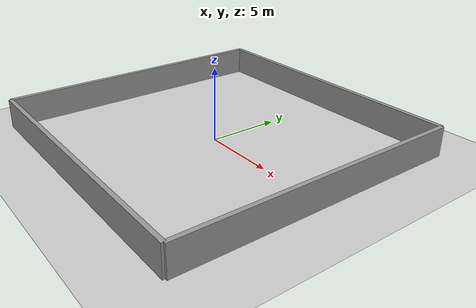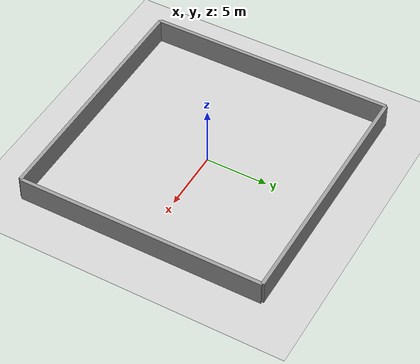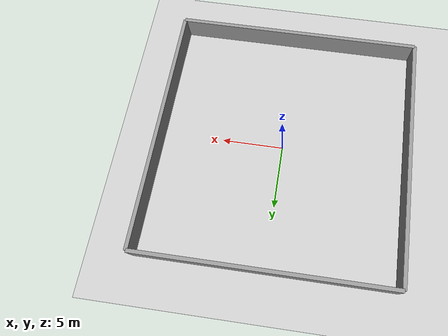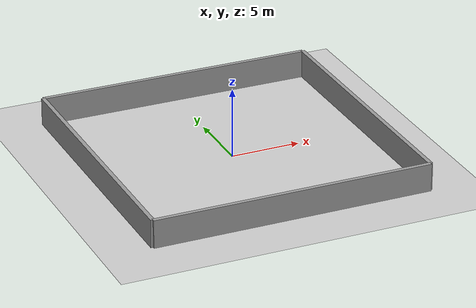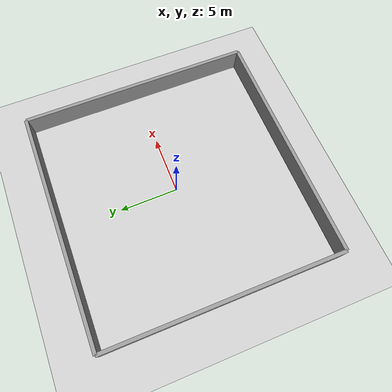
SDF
<sdf version='1.4'>
  <world name='default'>
    <!-- A global light source -->
    <include>
      <uri>model://sun</uri>
    </include>

    <!-- A ground plane -->
    <include>
      <uri>model://ground_plane</uri>
    </include>

    <physics type="ode">
      <real_time_update_rate>1000.0</real_time_update_rate>
      <max_step_size>0.001</max_step_size>
      <real_time_factor>1</real_time_factor>
      <ode>
        <solver>
          <type>quick</type>
          <iters>150</iters>
          <precon_iters>0</precon_iters>
          <sor>1.400000</sor>
          <use_dynamic_moi_rescaling>1</use_dynamic_moi_rescaling>
        </solver>
        <constraints>
          <cfm>0.00001</cfm>
          <erp>0.2</erp>
          <contact_max_correcting_vel>2000.000000</contact_max_correcting_vel>
          <contact_surface_layer>0.01000</contact_surface_layer>
        </constraints>
      </ode>
    </physics>

    <!-- place walls -->
    <model name='wall_n'>
      <pose>10.0 0.0 1.0 0 0 1.57</pose>
      <static>true</static>
      <link name='link'>
        <collision name='collision'>
          <geometry>
            <box>
              <size>20.0 0.3 2.0</size>
            </box>
          </geometry>
        </collision>
        <visual name='visual'>
          <geometry>
            <box>
              <size>20.0 0.3 2.0</size>
            </box>
          </geometry>
          <material>
            <script>
              <uri>file://media/materials/scripts/gazebo.material</uri>
              <name>Gazebo/Gray</name>
            </script>
          </material>
        </visual>
      </link>
    </model>

    <model name='wall_e'>
      <pose>0 -10.0 1.0 0 0 0.0</pose>
      <static>true</static>
      <link name='link'>
        <collision name='collision'>
          <geometry>
            <box>
              <size>20.0 0.3 2.0</size>
            </box>
          </geometry>
        </collision>
        <visual name='visual'>
          <geometry>
            <box>
              <size>20.0 0.3 2.0</size>
            </box>
          </geometry>
          <material>
            <script>
              <uri>file://media/materials/scripts/gazebo.material</uri>
              <name>Gazebo/Gray</name>
            </script>
          </material>
        </visual>
      </link>
    </model>

    <model name='wall_w'>
      <pose>0 10.0 1.0 0 0 0.0</pose>
      <static>true</static>
      <link name='link'>
        <collision name='collision'>
          <geometry>
            <box>
              <size>20.0 0.3 2.0</size>
            </box>
          </geometry>
        </collision>
        <visual name='visual'>
          <geometry>
            <box>
              <size>20.0 0.3 2.0</size>
            </box>
          </geometry>
          <material>
            <script>
              <uri>file://media/materials/scripts/gazebo.material</uri>
              <name>Gazebo/Gray</name>
            </script>
          </material>
        </visual>
      </link>
    </model>

    <model name='wall_s'>
      <pose>-10.0 0.0 1.0 0 0 1.57</pose>
      <static>true</static>
      <link name='link'>
        <collision name='collision'>
          <geometry>
            <box>
              <size>20.0 0.3 2.0</size>
            </box>
          </geometry>
        </collision>
        <visual name='visual'>
          <geometry>
            <box>
              <size>20.0 0.3 2.0</size>
            </box>
          </geometry>
          <material>
            <script>
              <uri>file://media/materials/scripts/gazebo.material</uri>
              <name>Gazebo/Gray</name>
            </script>
          </material>
        </visual>
      </link>
    </model>

    <scene>
      <ambient>0.4 0.4 0.4 1</ambient>
      <background>0.7 0.7 0.7 1</background>
      <shadows>true</shadows>
    </scene>

    <gui fullscreen='0'>
      <camera name='user_camera'>

        <pose>0.0 0.0 30.0 0 1.5708 0.0</pose>
        <view_controller>orbit</view_controller>
      </camera>
    </gui>
  </world>
</sdf>
